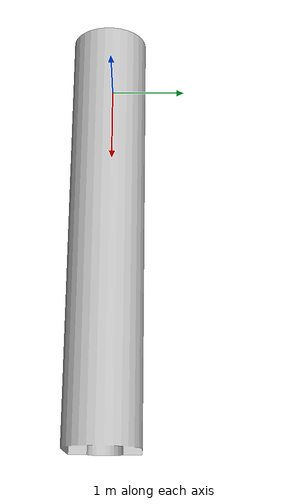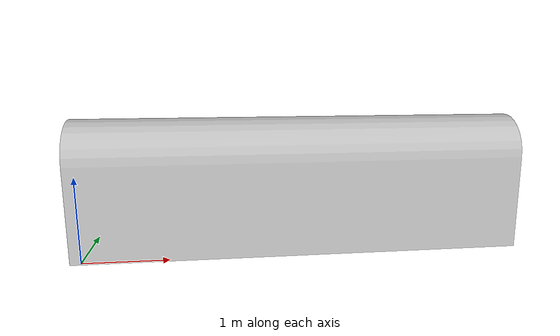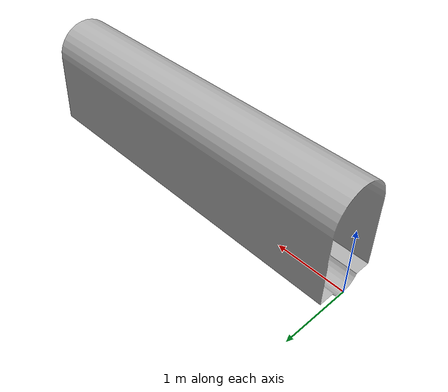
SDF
<?xml version="1.0" ?>
<sdf version="1.5">
  <model name="T130_straight_5m_dark_brick">
    <static>true</static>

   <link name="link">
      <collision name="collision">
        <geometry>
          <mesh>
            <uri>model://T130_straight_5m_dark_brick/meshes/T130_straight_5m_dark_brick.dae</uri>
          </mesh>
        </geometry>
      </collision>
      <visual name="visual">
        <geometry>
          <mesh>
            <uri>model://T130_straight_5m_dark_brick/meshes/T130_straight_5m_dark_brick.dae</uri>
          </mesh>
        </geometry>
      </visual>
    </link>
  </model>
</sdf>
